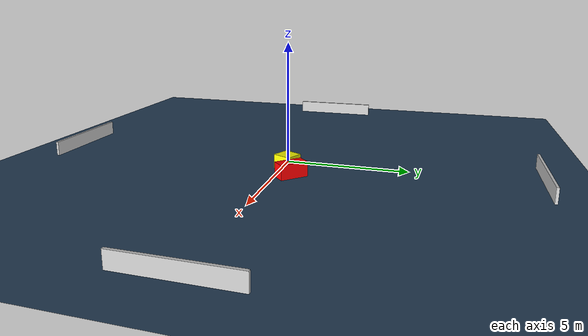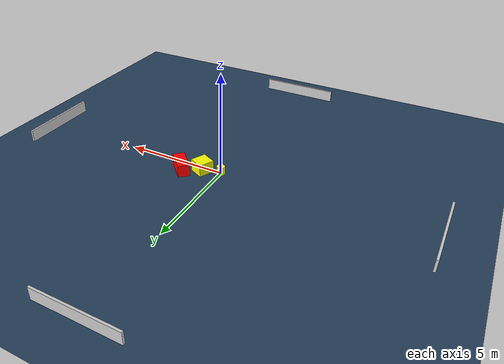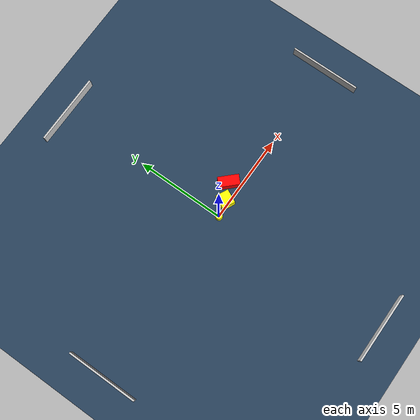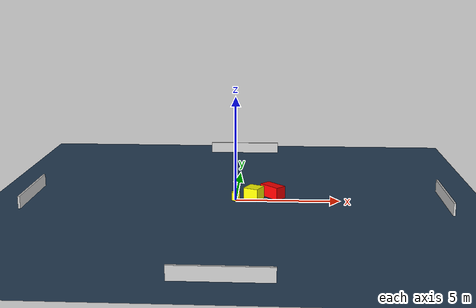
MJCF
<?xml version="1.0" ?>
<mujoco model="generated_environment">
  <option timestep="0.01" integrator="RK4" cone="elliptic"/>
  <default>
    <geom density="1"/>
  </default>
  <asset>
    <texture builtin="gradient" height="3072" name="skybox" rgb1="0.3 0.5 0.7" rgb2="0 0 0" type="skybox" width="512"/>
    <texture builtin="checker" height="300" name="groundplane" rgb1="0.2 0.3 0.4" rgb2="0.1 0.2 0.3" type="2d" width="300"/>
    <material name="groundplane" reflectance="0.2" texrepeat="5 5" texture="groundplane"/>
  </asset>
  <worldbody>
    <light dir="0 0 -1" directional="true" pos="0 0 1.5"/>
    <geom condim="3" friction="0.5 0.005 0.001" material="groundplane" name="floor" pos="0 0 0" size="0 0 0.05" type="plane"/>
    <body name="walls">
      <geom name="wall_1" condim="4" pos="-10.0 0.0 0.3" rgba="0.800000011920929 0.800000011920929 0.800000011920929 1.0" size="0.05 2.0 0.3" type="box"/>
      <geom name="wall_2" condim="4" pos="10.0 0.0 0.3" rgba="0.800000011920929 0.800000011920929 0.800000011920929 1.0" size="0.05 2.0 0.3" type="box"/>
      <geom name="wall_3" condim="4" pos="0.0 -10.0 0.3" rgba="0.800000011920929 0.800000011920929 0.800000011920929 1.0" size="2.0 0.05 0.3" type="box"/>
      <geom name="wall_4" condim="4" pos="0.0 10.0 0.3" rgba="0.800000011920929 0.800000011920929 0.800000011920929 1.0" size="2.0 0.05 0.3" type="box"/>
    </body>
    <body name="robot">
      <joint name="joint_x" type="slide" pos="0 0 0" axis="1 0 0"/>
      <joint name="joint_y" type="slide" pos="0 0 0" axis="0 1 0"/>
      <geom name="robot" type="cylinder" pos="0.0 0.0 0.2" size="0.2 0.2 0.0" mass="5.0" friction="1.0 0.005 0.0001" condim="4" rgba="1.0 1.0 0.0 1.0"/>
    </body>
    <body name="obstacle_1_movable">
      <geom name="obstacle_1_movable" condim="4" pos="0.8692848840266922 0.2156659160339056 0.3" euler="0 0 153.87202110809017" friction="0.0 0.005 0.001" rgba="1.0 1.0 0.0 1.0" size="0.36698301422147617 0.38760281668731966 0.3" type="box" mass="0.1"/>
      <joint type="free"/>
    </body>
    <body name="obstacle_2_static">
      <geom name="obstacle_2_static" condim="4" pos="1.7825378719771992 0.6353723363643212 0.3" euler="0 0 134.2300335701534" friction="0.0 0.005 0.001" rgba="1.0 0.0 0.0 1.0" size="0.5749891831245391 0.2847982062519429 0.3" type="box"/>
    </body>
  </worldbody>
  <actuator>
    <motor name="actuator_x" joint="joint_x" gear="1" ctrlrange="-1 1"/>
    <motor name="actuator_y" joint="joint_y" gear="1" ctrlrange="-1 1"/>
  </actuator>
</mujoco>
